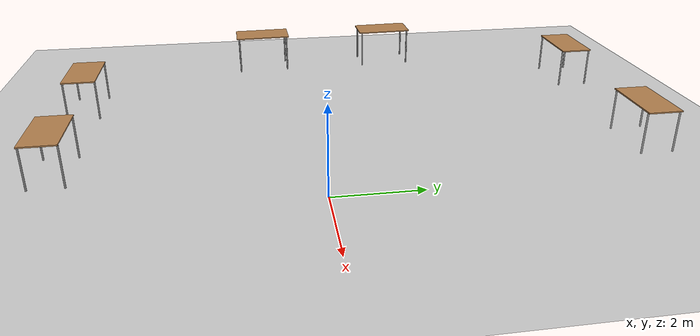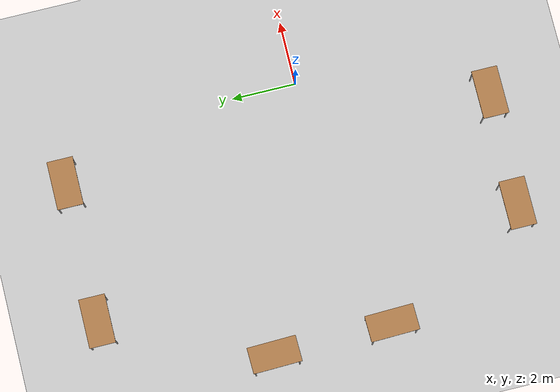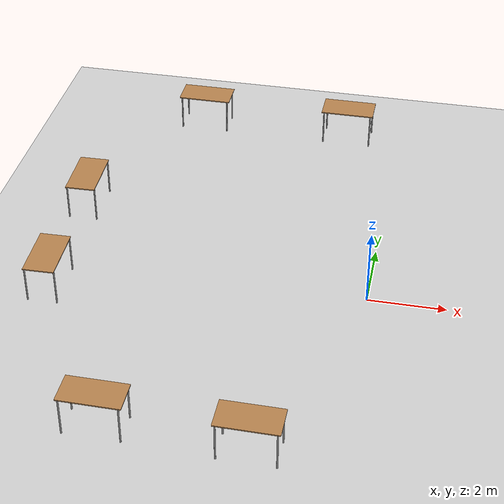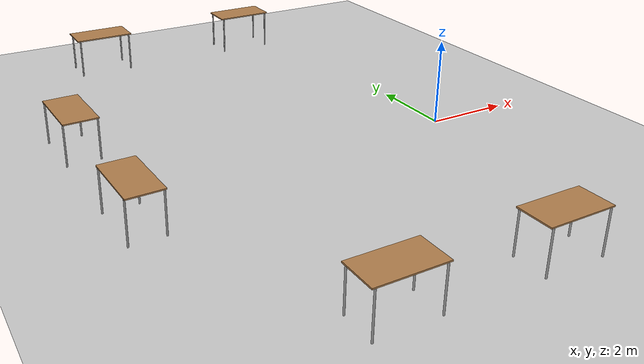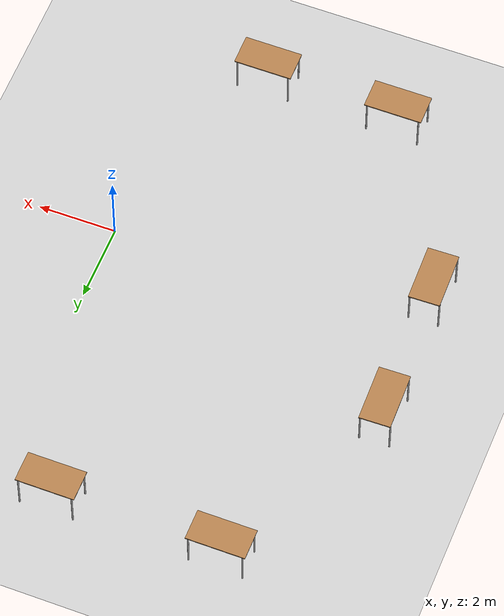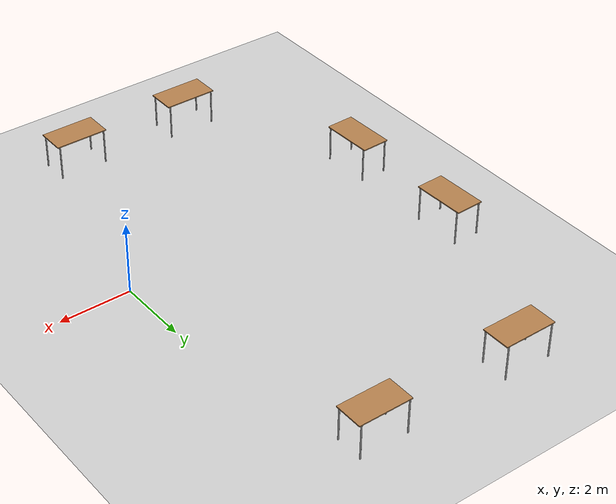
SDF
<sdf version="1.6">
 <world name="default">
  <model name="ground_plane">
   <static>1</static>
   <link name="link">
    <collision name="collision">
     <geometry><plane><normal>0 0 1</normal><size>100 100</size></plane></geometry>
     <surface>
      <contact><collide_bitmask>65535</collide_bitmask></contact>
      <friction><ode><mu>100</mu><mu2>50</mu2></ode></friction>
     </surface>
    </collision>
    <visual name="visual">
     <cast_shadows>0</cast_shadows>
     <geometry><plane><normal>0 0 1</normal><size>100 100</size></plane></geometry>
     <material>
      <script><uri>file://media/materials/scripts/gazebo.material</uri><name>Gazebo/Grey</name></script>
     </material>
    </visual>
   </link>
  </model>
  <model name="table_clone">
   <static>1</static>
   <link name="link">
    <collision name="surface">
     <pose>0 0 1 0 -0 0</pose>
     <geometry><box><size>1.5 0.8 0.03</size></box></geometry>
     <surface><friction><ode><mu>0.6</mu><mu2>0.6</mu2></ode></friction></surface>
    </collision>
    <visual name="visual1">
     <pose>0 0 1 0 -0 0</pose>
     <geometry><box><size>1.5 0.8 0.03</size></box></geometry>
     <material>
      <script><uri>file://media/materials/scripts/gazebo.material</uri><name>Gazebo/Wood</name></script>
     </material>
    </visual>
    <collision name="front_left_leg">
     <pose>0.68 0.38 0.5 0 -0 0</pose>
     <geometry><cylinder><radius>0.02</radius><length>1</length></cylinder></geometry>
    </collision>
    <visual name="front_left_leg">
     <pose>0.68 0.38 0.5 0 -0 0</pose>
     <geometry><cylinder><radius>0.02</radius><length>1</length></cylinder></geometry>
     <material>
      <script><uri>file://media/materials/scripts/gazebo.material</uri><name>Gazebo/Grey</name></script>
     </material>
    </visual>
    <collision name="front_right_leg">
     <pose>0.68 -0.38 0.5 0 -0 0</pose>
     <geometry><cylinder><radius>0.02</radius><length>1</length></cylinder></geometry>
    </collision>
    <visual name="front_right_leg">
     <pose>0.68 -0.38 0.5 0 -0 0</pose>
     <geometry><cylinder><radius>0.02</radius><length>1</length></cylinder></geometry>
     <material>
      <script><uri>file://media/materials/scripts/gazebo.material</uri><name>Gazebo/Grey</name></script>
     </material>
    </visual>
    <collision name="back_right_leg">
     <pose>-0.68 -0.38 0.5 0 -0 0</pose>
     <geometry><cylinder><radius>0.02</radius><length>1</length></cylinder></geometry>
    </collision>
    <visual name="back_right_leg">
     <pose>-0.68 -0.38 0.5 0 -0 0</pose>
     <geometry><cylinder><radius>0.02</radius><length>1</length></cylinder></geometry>
     <material>
      <script><uri>file://media/materials/scripts/gazebo.material</uri><name>Gazebo/Grey</name></script>
     </material>
    </visual>
    <collision name="back_left_leg">
     <pose>-0.68 0.38 0.5 0 -0 0</pose>
     <geometry><cylinder><radius>0.02</radius><length>1</length></cylinder></geometry>
    </collision>
    <visual name="back_left_leg">
     <pose>-0.68 0.38 0.5 0 -0 0</pose>
     <geometry><cylinder><radius>0.02</radius><length>1</length></cylinder></geometry>
     <material>
      <script><uri>file://media/materials/scripts/gazebo.material</uri><name>Gazebo/Grey</name></script>
     </material>
    </visual>
   </link>
   <pose>-1.86776 -5.62268 0 0 -0 0</pose>
  </model>
  <model name="table_clone_0">
   <static>1</static>
   <link name="link">
    <collision name="surface">
     <pose>0 0 1 0 -0 0</pose>
     <geometry><box><size>1.5 0.8 0.03</size></box></geometry>
     <surface><friction><ode><mu>0.6</mu><mu2>0.6</mu2></ode></friction></surface>
    </collision>
    <visual name="visual1">
     <pose>0 0 1 0 -0 0</pose>
     <geometry><box><size>1.5 0.8 0.03</size></box></geometry>
     <material>
      <script><uri>file://media/materials/scripts/gazebo.material</uri><name>Gazebo/Wood</name></script>
     </material>
    </visual>
    <collision name="front_left_leg">
     <pose>0.68 0.38 0.5 0 -0 0</pose>
     <geometry><cylinder><radius>0.02</radius><length>1</length></cylinder></geometry>
    </collision>
    <visual name="front_left_leg">
     <pose>0.68 0.38 0.5 0 -0 0</pose>
     <geometry><cylinder><radius>0.02</radius><length>1</length></cylinder></geometry>
     <material>
      <script><uri>file://media/materials/scripts/gazebo.material</uri><name>Gazebo/Grey</name></script>
     </material>
    </visual>
    <collision name="front_right_leg">
     <pose>0.68 -0.38 0.5 0 -0 0</pose>
     <geometry><cylinder><radius>0.02</radius><length>1</length></cylinder></geometry>
    </collision>
    <visual name="front_right_leg">
     <pose>0.68 -0.38 0.5 0 -0 0</pose>
     <geometry><cylinder><radius>0.02</radius><length>1</length></cylinder></geometry>
     <material>
      <script><uri>file://media/materials/scripts/gazebo.material</uri><name>Gazebo/Grey</name></script>
     </material>
    </visual>
    <collision name="back_right_leg">
     <pose>-0.68 -0.38 0.5 0 -0 0</pose>
     <geometry><cylinder><radius>0.02</radius><length>1</length></cylinder></geometry>
    </collision>
    <visual name="back_right_leg">
     <pose>-0.68 -0.38 0.5 0 -0 0</pose>
     <geometry><cylinder><radius>0.02</radius><length>1</length></cylinder></geometry>
     <material>
      <script><uri>file://media/materials/scripts/gazebo.material</uri><name>Gazebo/Grey</name></script>
     </material>
    </visual>
    <collision name="back_left_leg">
     <pose>-0.68 0.38 0.5 0 -0 0</pose>
     <geometry><cylinder><radius>0.02</radius><length>1</length></cylinder></geometry>
    </collision>
    <visual name="back_left_leg">
     <pose>-0.68 0.38 0.5 0 -0 0</pose>
     <geometry><cylinder><radius>0.02</radius><length>1</length></cylinder></geometry>
     <material>
      <script><uri>file://media/materials/scripts/gazebo.material</uri><name>Gazebo/Grey</name></script>
     </material>
    </visual>
   </link>
   <pose>-5.35874 -5.55545 0 0 -0 0</pose>
  </model>
  <model name="table_clone_0_clone">
   <static>1</static>
   <link name="link">
    <collision name="surface">
     <pose>0 0 1 0 -0 0</pose>
     <geometry><box><size>1.5 0.8 0.03</size></box></geometry>
     <surface><friction><ode><mu>0.6</mu><mu2>0.6</mu2></ode></friction></surface>
    </collision>
    <visual name="visual1">
     <pose>0 0 1 0 -0 0</pose>
     <geometry><box><size>1.5 0.8 0.03</size></box></geometry>
     <material>
      <script><uri>file://media/materials/scripts/gazebo.material</uri><name>Gazebo/Wood</name></script>
     </material>
    </visual>
    <collision name="front_left_leg">
     <pose>0.68 0.38 0.5 0 -0 0</pose>
     <geometry><cylinder><radius>0.02</radius><length>1</length></cylinder></geometry>
    </collision>
    <visual name="front_left_leg">
     <pose>0.68 0.38 0.5 0 -0 0</pose>
     <geometry><cylinder><radius>0.02</radius><length>1</length></cylinder></geometry>
     <material>
      <script><uri>file://media/materials/scripts/gazebo.material</uri><name>Gazebo/Grey</name></script>
     </material>
    </visual>
    <collision name="front_right_leg">
     <pose>0.68 -0.38 0.5 0 -0 0</pose>
     <geometry><cylinder><radius>0.02</radius><length>1</length></cylinder></geometry>
    </collision>
    <visual name="front_right_leg">
     <pose>0.68 -0.38 0.5 0 -0 0</pose>
     <geometry><cylinder><radius>0.02</radius><length>1</length></cylinder></geometry>
     <material>
      <script><uri>file://media/materials/scripts/gazebo.material</uri><name>Gazebo/Grey</name></script>
     </material>
    </visual>
    <collision name="back_right_leg">
     <pose>-0.68 -0.38 0.5 0 -0 0</pose>
     <geometry><cylinder><radius>0.02</radius><length>1</length></cylinder></geometry>
    </collision>
    <visual name="back_right_leg">
     <pose>-0.68 -0.38 0.5 0 -0 0</pose>
     <geometry><cylinder><radius>0.02</radius><length>1</length></cylinder></geometry>
     <material>
      <script><uri>file://media/materials/scripts/gazebo.material</uri><name>Gazebo/Grey</name></script>
     </material>
    </visual>
    <collision name="back_left_leg">
     <pose>-0.68 0.38 0.5 0 -0 0</pose>
     <geometry><cylinder><radius>0.02</radius><length>1</length></cylinder></geometry>
    </collision>
    <visual name="back_left_leg">
     <pose>-0.68 0.38 0.5 0 -0 0</pose>
     <geometry><cylinder><radius>0.02</radius><length>1</length></cylinder></geometry>
     <material>
      <script><uri>file://media/materials/scripts/gazebo.material</uri><name>Gazebo/Grey</name></script>
     </material>
    </visual>
   </link>
   <pose>-7.96209 -0.990144 0 9.2e-05 0.003589 -1.54506</pose>
  </model>
  <model name="table_clone_0_clone_clone">
   <static>1</static>
   <link name="link">
    <collision name="surface">
     <pose>0 0 1 0 -0 0</pose>
     <geometry><box><size>1.5 0.8 0.03</size></box></geometry>
     <surface><friction><ode><mu>0.6</mu><mu2>0.6</mu2></ode></friction></surface>
    </collision>
    <visual name="visual1">
     <pose>0 0 1 0 -0 0</pose>
     <geometry><box><size>1.5 0.8 0.03</size></box></geometry>
     <material>
      <script><uri>file://media/materials/scripts/gazebo.material</uri><name>Gazebo/Wood</name></script>
     </material>
    </visual>
    <collision name="front_left_leg">
     <pose>0.68 0.38 0.5 0 -0 0</pose>
     <geometry><cylinder><radius>0.02</radius><length>1</length></cylinder></geometry>
    </collision>
    <visual name="front_left_leg">
     <pose>0.68 0.38 0.5 0 -0 0</pose>
     <geometry><cylinder><radius>0.02</radius><length>1</length></cylinder></geometry>
     <material>
      <script><uri>file://media/materials/scripts/gazebo.material</uri><name>Gazebo/Grey</name></script>
     </material>
    </visual>
    <collision name="front_right_leg">
     <pose>0.68 -0.38 0.5 0 -0 0</pose>
     <geometry><cylinder><radius>0.02</radius><length>1</length></cylinder></geometry>
    </collision>
    <visual name="front_right_leg">
     <pose>0.68 -0.38 0.5 0 -0 0</pose>
     <geometry><cylinder><radius>0.02</radius><length>1</length></cylinder></geometry>
     <material>
      <script><uri>file://media/materials/scripts/gazebo.material</uri><name>Gazebo/Grey</name></script>
     </material>
    </visual>
    <collision name="back_right_leg">
     <pose>-0.68 -0.38 0.5 0 -0 0</pose>
     <geometry><cylinder><radius>0.02</radius><length>1</length></cylinder></geometry>
    </collision>
    <visual name="back_right_leg">
     <pose>-0.68 -0.38 0.5 0 -0 0</pose>
     <geometry><cylinder><radius>0.02</radius><length>1</length></cylinder></geometry>
     <material>
      <script><uri>file://media/materials/scripts/gazebo.material</uri><name>Gazebo/Grey</name></script>
     </material>
    </visual>
    <collision name="back_left_leg">
     <pose>-0.68 0.38 0.5 0 -0 0</pose>
     <geometry><cylinder><radius>0.02</radius><length>1</length></cylinder></geometry>
    </collision>
    <visual name="back_left_leg">
     <pose>-0.68 0.38 0.5 0 -0 0</pose>
     <geometry><cylinder><radius>0.02</radius><length>1</length></cylinder></geometry>
     <material>
      <script><uri>file://media/materials/scripts/gazebo.material</uri><name>Gazebo/Grey</name></script>
     </material>
    </visual>
   </link>
   <pose>-8.04147 2.63602 0 9.2e-05 0.003589 -1.54506</pose>
  </model>
  <model name="table_clone_2">
   <static>1</static>
   <link name="link">
    <collision name="surface">
     <pose>0 0 1 0 -0 0</pose>
     <geometry><box><size>1.5 0.8 0.03</size></box></geometry>
     <surface><friction><ode><mu>0.6</mu><mu2>0.6</mu2></ode></friction></surface>
    </collision>
    <visual name="visual1">
     <pose>0 0 1 0 -0 0</pose>
     <geometry><box><size>1.5 0.8 0.03</size></box></geometry>
     <material>
      <script><uri>file://media/materials/scripts/gazebo.material</uri><name>Gazebo/Wood</name></script>
     </material>
    </visual>
    <collision name="front_left_leg">
     <pose>0.68 0.38 0.5 0 -0 0</pose>
     <geometry><cylinder><radius>0.02</radius><length>1</length></cylinder></geometry>
    </collision>
    <visual name="front_left_leg">
     <pose>0.68 0.38 0.5 0 -0 0</pose>
     <geometry><cylinder><radius>0.02</radius><length>1</length></cylinder></geometry>
     <material>
      <script><uri>file://media/materials/scripts/gazebo.material</uri><name>Gazebo/Grey</name></script>
     </material>
    </visual>
    <collision name="front_right_leg">
     <pose>0.68 -0.38 0.5 0 -0 0</pose>
     <geometry><cylinder><radius>0.02</radius><length>1</length></cylinder></geometry>
    </collision>
    <visual name="front_right_leg">
     <pose>0.68 -0.38 0.5 0 -0 0</pose>
     <geometry><cylinder><radius>0.02</radius><length>1</length></cylinder></geometry>
     <material>
      <script><uri>file://media/materials/scripts/gazebo.material</uri><name>Gazebo/Grey</name></script>
     </material>
    </visual>
    <collision name="back_right_leg">
     <pose>-0.68 -0.38 0.5 0 -0 0</pose>
     <geometry><cylinder><radius>0.02</radius><length>1</length></cylinder></geometry>
    </collision>
    <visual name="back_right_leg">
     <pose>-0.68 -0.38 0.5 0 -0 0</pose>
     <geometry><cylinder><radius>0.02</radius><length>1</length></cylinder></geometry>
     <material>
      <script><uri>file://media/materials/scripts/gazebo.material</uri><name>Gazebo/Grey</name></script>
     </material>
    </visual>
    <collision name="back_left_leg">
     <pose>-0.68 0.38 0.5 0 -0 0</pose>
     <geometry><cylinder><radius>0.02</radius><length>1</length></cylinder></geometry>
    </collision>
    <visual name="back_left_leg">
     <pose>-0.68 0.38 0.5 0 -0 0</pose>
     <geometry><cylinder><radius>0.02</radius><length>1</length></cylinder></geometry>
     <material>
      <script><uri>file://media/materials/scripts/gazebo.material</uri><name>Gazebo/Grey</name></script>
     </material>
    </visual>
   </link>
   <pose>-1.51133 7.52621 0 0 -0 0</pose>
  </model>
  <model name="table_clone_2_clone">
   <static>1</static>
   <link name="link">
    <collision name="surface">
     <pose>0 0 1 0 -0 0</pose>
     <geometry><box><size>1.5 0.8 0.03</size></box></geometry>
     <surface><friction><ode><mu>0.6</mu><mu2>0.6</mu2></ode></friction></surface>
    </collision>
    <visual name="visual1">
     <pose>0 0 1 0 -0 0</pose>
     <geometry><box><size>1.5 0.8 0.03</size></box></geometry>
     <material>
      <script><uri>file://media/materials/scripts/gazebo.material</uri><name>Gazebo/Wood</name></script>
     </material>
    </visual>
    <collision name="front_left_leg">
     <pose>0.68 0.38 0.5 0 -0 0</pose>
     <geometry><cylinder><radius>0.02</radius><length>1</length></cylinder></geometry>
    </collision>
    <visual name="front_left_leg">
     <pose>0.68 0.38 0.5 0 -0 0</pose>
     <geometry><cylinder><radius>0.02</radius><length>1</length></cylinder></geometry>
     <material>
      <script><uri>file://media/materials/scripts/gazebo.material</uri><name>Gazebo/Grey</name></script>
     </material>
    </visual>
    <collision name="front_right_leg">
     <pose>0.68 -0.38 0.5 0 -0 0</pose>
     <geometry><cylinder><radius>0.02</radius><length>1</length></cylinder></geometry>
    </collision>
    <visual name="front_right_leg">
     <pose>0.68 -0.38 0.5 0 -0 0</pose>
     <geometry><cylinder><radius>0.02</radius><length>1</length></cylinder></geometry>
     <material>
      <script><uri>file://media/materials/scripts/gazebo.material</uri><name>Gazebo/Grey</name></script>
     </material>
    </visual>
    <collision name="back_right_leg">
     <pose>-0.68 -0.38 0.5 0 -0 0</pose>
     <geometry><cylinder><radius>0.02</radius><length>1</length></cylinder></geometry>
    </collision>
    <visual name="back_right_leg">
     <pose>-0.68 -0.38 0.5 0 -0 0</pose>
     <geometry><cylinder><radius>0.02</radius><length>1</length></cylinder></geometry>
     <material>
      <script><uri>file://media/materials/scripts/gazebo.material</uri><name>Gazebo/Grey</name></script>
     </material>
    </visual>
    <collision name="back_left_leg">
     <pose>-0.68 0.38 0.5 0 -0 0</pose>
     <geometry><cylinder><radius>0.02</radius><length>1</length></cylinder></geometry>
    </collision>
    <visual name="back_left_leg">
     <pose>-0.68 0.38 0.5 0 -0 0</pose>
     <geometry><cylinder><radius>0.02</radius><length>1</length></cylinder></geometry>
     <material>
      <script><uri>file://media/materials/scripts/gazebo.material</uri><name>Gazebo/Grey</name></script>
     </material>
    </visual>
   </link>
   <pose>-5.80634 7.52609 0 0 -0 0</pose>
  </model>
 </world>
</sdf>
